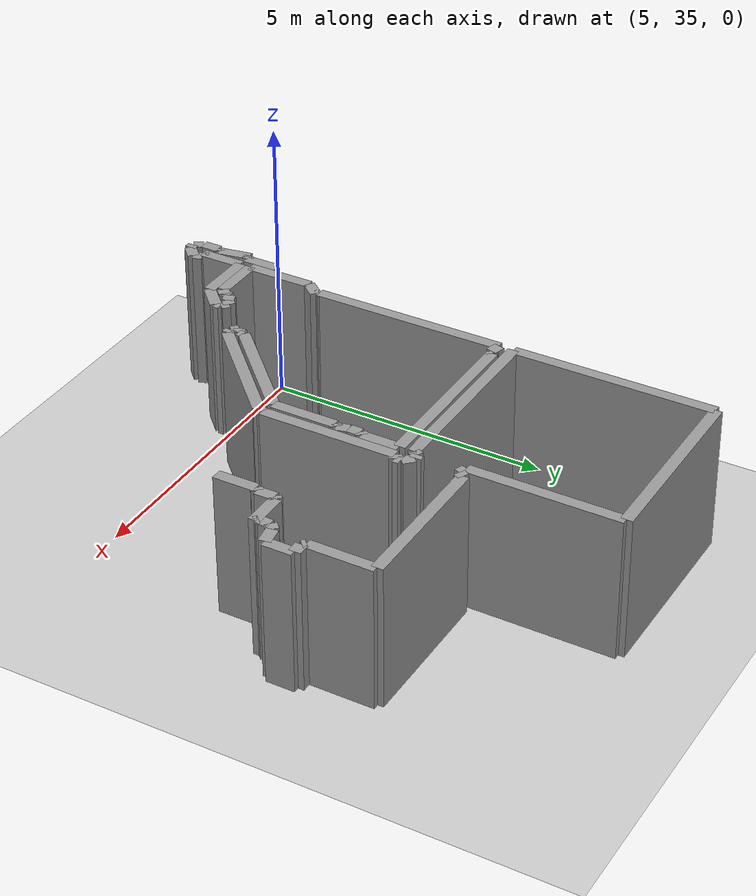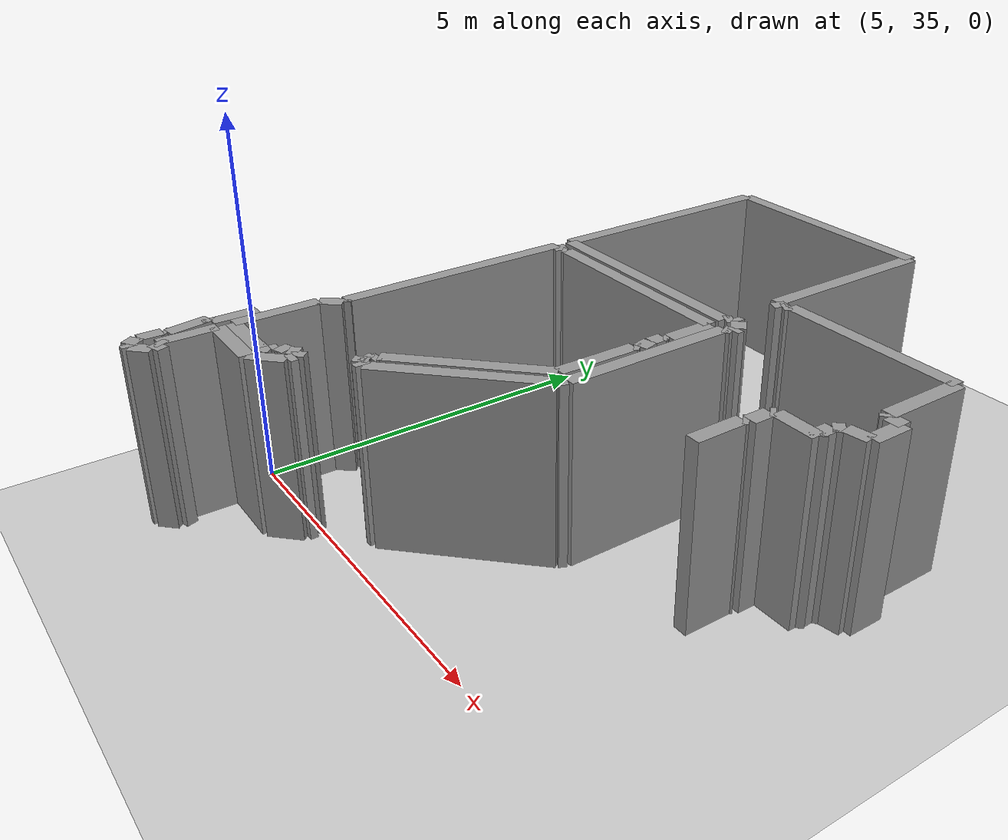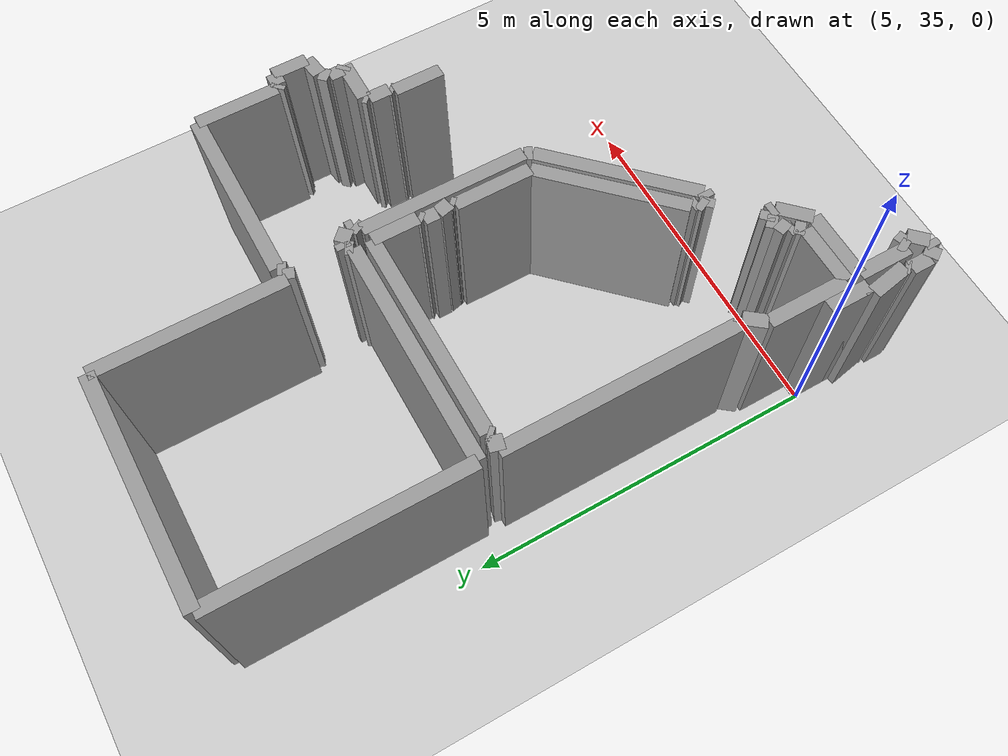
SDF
<sdf version="1.4">
 <world name="1_wall">
  <model name="ground_plane">
   <static>1</static>
   <link name="link">
    <collision name="collision">
     <geometry><plane><normal>0 0 1</normal><size>1000 1000</size></plane></geometry>
     <surface><friction><ode><mu>100</mu><mu2>50</mu2></ode></friction></surface>
    </collision>
    <visual name="visual">
     <cast_shadows>0</cast_shadows>
     <geometry><plane><normal>0 0 1</normal><size>10000 10000</size></plane></geometry>
     <material>
      <script><uri>file://media/materials/scripts/gazebo.material</uri><name>Gazebo/Grey</name></script>
     </material>
    </visual>
    <velocity_decay><linear>0</linear><angular>0</angular></velocity_decay>
   </link>
  </model>
  <model name="Wall_199">
   <static>1</static>
   <link name="Wall_199">
    <collision name="Wall_Collision_199">
     <geometry><box><size>0.6000000000000014 0.2 2.5</size></box></geometry>
     <pose>0 0 1.25 0 -0 0</pose>
    </collision>
    <visual name="Wall_Visual_199">
     <pose>0 0 1.25 0 -0 0</pose>
     <geometry><box><size>0.6000000000000014 0.2 2.5</size></box></geometry>
     <material>
      <script><uri>file://media/materials/scripts/gazebo.material</uri><name>Gazebo/Grey</name></script>
     </material>
    </visual>
    <velocity_decay><linear>0</linear><angular>0</angular></velocity_decay>
    <pose>5.1000000000000005 34.75 0 0 0 -1.5707963267948966</pose>
   </link>
  </model>
  <model name="Wall_200">
   <static>1</static>
   <link name="Wall_200">
    <collision name="Wall_Collision_200">
     <geometry><box><size>0.10000000000000053 0.2 2.5</size></box></geometry>
     <pose>0 0 1.25 0 -0 0</pose>
    </collision>
    <visual name="Wall_Visual_200">
     <pose>0 0 1.25 0 -0 0</pose>
     <geometry><box><size>0.10000000000000053 0.2 2.5</size></box></geometry>
     <material>
      <script><uri>file://media/materials/scripts/gazebo.material</uri><name>Gazebo/Grey</name></script>
     </material>
    </visual>
    <velocity_decay><linear>0</linear><angular>0</angular></velocity_decay>
    <pose>5.050000000000001 34.45 0 0 0 3.141592653589793</pose>
   </link>
  </model>
  <model name="Wall_201">
   <static>1</static>
   <link name="Wall_201">
    <collision name="Wall_Collision_201">
     <geometry><box><size>0.5590169943749518 0.2 2.5</size></box></geometry>
     <pose>0 0 1.25 0 -0 0</pose>
    </collision>
    <visual name="Wall_Visual_201">
     <pose>0 0 1.25 0 -0 0</pose>
     <geometry><box><size>0.5590169943749518 0.2 2.5</size></box></geometry>
     <material>
      <script><uri>file://media/materials/scripts/gazebo.material</uri><name>Gazebo/Grey</name></script>
     </material>
    </visual>
    <velocity_decay><linear>0</linear><angular>0</angular></velocity_decay>
    <pose>5.050000000000001 34.175 0 0 0 -1.3909428270024187</pose>
   </link>
  </model>
  <model name="Wall_202">
   <static>1</static>
   <link name="Wall_202">
    <collision name="Wall_Collision_202">
     <geometry><box><size>0.07071067811865261 0.2 2.5</size></box></geometry>
     <pose>0 0 1.25 0 -0 0</pose>
    </collision>
    <visual name="Wall_Visual_202">
     <pose>0 0 1.25 0 -0 0</pose>
     <geometry><box><size>0.07071067811865261 0.2 2.5</size></box></geometry>
     <material>
      <script><uri>file://media/materials/scripts/gazebo.material</uri><name>Gazebo/Grey</name></script>
     </material>
    </visual>
    <velocity_decay><linear>0</linear><angular>0</angular></velocity_decay>
    <pose>5.075000000000001 33.875 0 0 0 -2.3561944901923715</pose>
   </link>
  </model>
  <model name="Wall_203">
   <static>1</static>
   <link name="Wall_203">
    <collision name="Wall_Collision_203">
     <geometry><box><size>0.29999999999999716 0.2 2.5</size></box></geometry>
     <pose>0 0 1.25 0 -0 0</pose>
    </collision>
    <visual name="Wall_Visual_203">
     <pose>0 0 1.25 0 -0 0</pose>
     <geometry><box><size>0.29999999999999716 0.2 2.5</size></box></geometry>
     <material>
      <script><uri>file://media/materials/scripts/gazebo.material</uri><name>Gazebo/Grey</name></script>
     </material>
    </visual>
    <velocity_decay><linear>0</linear><angular>0</angular></velocity_decay>
    <pose>5.050000000000001 33.7 0 0 0 -1.5707963267948966</pose>
   </link>
  </model>
  <model name="Wall_204">
   <static>1</static>
   <link name="Wall_204">
    <collision name="Wall_Collision_204">
     <geometry><box><size>0.180277563773204 0.2 2.5</size></box></geometry>
     <pose>0 0 1.25 0 -0 0</pose>
    </collision>
    <visual name="Wall_Visual_204">
     <pose>0 0 1.25 0 -0 0</pose>
     <geometry><box><size>0.180277563773204 0.2 2.5</size></box></geometry>
     <material>
      <script><uri>file://media/materials/scripts/gazebo.material</uri><name>Gazebo/Grey</name></script>
     </material>
    </visual>
    <velocity_decay><linear>0</linear><angular>0</angular></velocity_decay>
    <pose>5.1000000000000005 33.475 0 0 0 -0.9827937232473481</pose>
   </link>
  </model>
  <model name="Wall_205">
   <static>1</static>
   <link name="Wall_205">
    <collision name="Wall_Collision_205">
     <geometry><box><size>0.09999999999999964 0.2 2.5</size></box></geometry>
     <pose>0 0 1.25 0 -0 0</pose>
    </collision>
    <visual name="Wall_Visual_205">
     <pose>0 0 1.25 0 -0 0</pose>
     <geometry><box><size>0.09999999999999964 0.2 2.5</size></box></geometry>
     <material>
      <script><uri>file://media/materials/scripts/gazebo.material</uri><name>Gazebo/Grey</name></script>
     </material>
    </visual>
    <velocity_decay><linear>0</linear><angular>0</angular></velocity_decay>
    <pose>5.2 33.4 0 0 0 0.0</pose>
   </link>
  </model>
  <model name="Wall_206">
   <static>1</static>
   <link name="Wall_206">
    <collision name="Wall_Collision_206">
     <geometry><box><size>0.28284271247462117 0.2 2.5</size></box></geometry>
     <pose>0 0 1.25 0 -0 0</pose>
    </collision>
    <visual name="Wall_Visual_206">
     <pose>0 0 1.25 0 -0 0</pose>
     <geometry><box><size>0.28284271247462117 0.2 2.5</size></box></geometry>
     <material>
      <script><uri>file://media/materials/scripts/gazebo.material</uri><name>Gazebo/Grey</name></script>
     </material>
    </visual>
    <velocity_decay><linear>0</linear><angular>0</angular></velocity_decay>
    <pose>5.35 33.5 0 0 0 0.7853981633974549</pose>
   </link>
  </model>
  <model name="Wall_207">
   <static>1</static>
   <link name="Wall_207">
    <collision name="Wall_Collision_207">
     <geometry><box><size>0.15811388300841756 0.2 2.5</size></box></geometry>
     <pose>0 0 1.25 0 -0 0</pose>
    </collision>
    <visual name="Wall_Visual_207">
     <pose>0 0 1.25 0 -0 0</pose>
     <geometry><box><size>0.15811388300841756 0.2 2.5</size></box></geometry>
     <material>
      <script><uri>file://media/materials/scripts/gazebo.material</uri><name>Gazebo/Grey</name></script>
     </material>
    </visual>
    <velocity_decay><linear>0</linear><angular>0</angular></velocity_decay>
    <pose>5.425000000000001 33.675 0 0 0 1.8925468811915407</pose>
   </link>
  </model>
  <model name="Wall_208">
   <static>1</static>
   <link name="Wall_208">
    <collision name="Wall_Collision_208">
     <geometry><box><size>0.1118033988749879 0.2 2.5</size></box></geometry>
     <pose>0 0 1.25 0 -0 0</pose>
    </collision>
    <visual name="Wall_Visual_208">
     <pose>0 0 1.25 0 -0 0</pose>
     <geometry><box><size>0.1118033988749879 0.2 2.5</size></box></geometry>
     <material>
      <script><uri>file://media/materials/scripts/gazebo.material</uri><name>Gazebo/Grey</name></script>
     </material>
    </visual>
    <velocity_decay><linear>0</linear><angular>0</angular></velocity_decay>
    <pose>5.3500000000000005 33.725 0 0 0 -2.6779450445890083</pose>
   </link>
  </model>
  <model name="Wall_209">
   <static>1</static>
   <link name="Wall_209">
    <collision name="Wall_Collision_209">
     <geometry><box><size>0.75 0.2 2.5</size></box></geometry>
     <pose>0 0 1.25 0 -0 0</pose>
    </collision>
    <visual name="Wall_Visual_209">
     <pose>0 0 1.25 0 -0 0</pose>
     <geometry><box><size>0.75 0.2 2.5</size></box></geometry>
     <material>
      <script><uri>file://media/materials/scripts/gazebo.material</uri><name>Gazebo/Grey</name></script>
     </material>
    </visual>
    <velocity_decay><linear>0</linear><angular>0</angular></velocity_decay>
    <pose>5.300000000000001 34.075 0 0 0 1.5707963267948966</pose>
   </link>
  </model>
  <model name="Wall_210">
   <static>1</static>
   <link name="Wall_210">
    <collision name="Wall_Collision_210">
     <geometry><box><size>0.9499999999999993 0.2 2.5</size></box></geometry>
     <pose>0 0 1.25 0 -0 0</pose>
    </collision>
    <visual name="Wall_Visual_210">
     <pose>0 0 1.25 0 -0 0</pose>
     <geometry><box><size>0.9499999999999993 0.2 2.5</size></box></geometry>
     <material>
      <script><uri>file://media/materials/scripts/gazebo.material</uri><name>Gazebo/Grey</name></script>
     </material>
    </visual>
    <velocity_decay><linear>0</linear><angular>0</angular></velocity_decay>
    <pose>5.775 34.45 0 0 0 0.0</pose>
   </link>
  </model>
  <model name="Wall_211">
   <static>1</static>
   <link name="Wall_211">
    <collision name="Wall_Collision_211">
     <geometry><box><size>0.4949747468305847 0.2 2.5</size></box></geometry>
     <pose>0 0 1.25 0 -0 0</pose>
    </collision>
    <visual name="Wall_Visual_211">
     <pose>0 0 1.25 0 -0 0</pose>
     <geometry><box><size>0.4949747468305847 0.2 2.5</size></box></geometry>
     <material>
      <script><uri>file://media/materials/scripts/gazebo.material</uri><name>Gazebo/Grey</name></script>
     </material>
    </visual>
    <velocity_decay><linear>0</linear><angular>0</angular></velocity_decay>
    <pose>6.425000000000001 34.625 0 0 0 0.7853981633974496</pose>
   </link>
  </model>
  <model name="Wall_212">
   <static>1</static>
   <link name="Wall_212">
    <collision name="Wall_Collision_212">
     <geometry><box><size>0.09999999999999432 0.2 2.5</size></box></geometry>
     <pose>0 0 1.25 0 -0 0</pose>
    </collision>
    <visual name="Wall_Visual_212">
     <pose>0 0 1.25 0 -0 0</pose>
     <geometry><box><size>0.09999999999999432 0.2 2.5</size></box></geometry>
     <material>
      <script><uri>file://media/materials/scripts/gazebo.material</uri><name>Gazebo/Grey</name></script>
     </material>
    </visual>
    <velocity_decay><linear>0</linear><angular>0</angular></velocity_decay>
    <pose>6.6000000000000005 34.85 0 0 0 1.5707963267948966</pose>
   </link>
  </model>
  <model name="Wall_213">
   <static>1</static>
   <link name="Wall_213">
    <collision name="Wall_Collision_213">
     <geometry><box><size>0.1414213562373109 0.2 2.5</size></box></geometry>
     <pose>0 0 1.25 0 -0 0</pose>
    </collision>
    <visual name="Wall_Visual_213">
     <pose>0 0 1.25 0 -0 0</pose>
     <geometry><box><size>0.1414213562373109 0.2 2.5</size></box></geometry>
     <material>
      <script><uri>file://media/materials/scripts/gazebo.material</uri><name>Gazebo/Grey</name></script>
     </material>
    </visual>
    <velocity_decay><linear>0</linear><angular>0</angular></velocity_decay>
    <pose>6.550000000000001 34.95 0 0 0 2.3561944901923404</pose>
   </link>
  </model>
  <model name="Wall_214">
   <static>1</static>
   <link name="Wall_214">
    <collision name="Wall_Collision_214">
     <geometry><box><size>0.14142135623731025 0.2 2.5</size></box></geometry>
     <pose>0 0 1.25 0 -0 0</pose>
    </collision>
    <visual name="Wall_Visual_214">
     <pose>0 0 1.25 0 -0 0</pose>
     <geometry><box><size>0.14142135623731025 0.2 2.5</size></box></geometry>
     <material>
      <script><uri>file://media/materials/scripts/gazebo.material</uri><name>Gazebo/Grey</name></script>
     </material>
    </visual>
    <velocity_decay><linear>0</linear><angular>0</angular></velocity_decay>
    <pose>6.45 34.95 0 0 0 -2.356194490192336</pose>
   </link>
  </model>
  <model name="Wall_215">
   <static>1</static>
   <link name="Wall_215">
    <collision name="Wall_Collision_215">
     <geometry><box><size>0.1581138830084184 0.2 2.5</size></box></geometry>
     <pose>0 0 1.25 0 -0 0</pose>
    </collision>
    <visual name="Wall_Visual_215">
     <pose>0 0 1.25 0 -0 0</pose>
     <geometry><box><size>0.1581138830084184 0.2 2.5</size></box></geometry>
     <material>
      <script><uri>file://media/materials/scripts/gazebo.material</uri><name>Gazebo/Grey</name></script>
     </material>
    </visual>
    <velocity_decay><linear>0</linear><angular>0</angular></velocity_decay>
    <pose>6.325 34.875 0 0 0 -2.8198420991931687</pose>
   </link>
  </model>
  <model name="Wall_216">
   <static>1</static>
   <link name="Wall_216">
    <collision name="Wall_Collision_216">
     <geometry><box><size>0.10000000000000142 0.2 2.5</size></box></geometry>
     <pose>0 0 1.25 0 -0 0</pose>
    </collision>
    <visual name="Wall_Visual_216">
     <pose>0 0 1.25 0 -0 0</pose>
     <geometry><box><size>0.10000000000000142 0.2 2.5</size></box></geometry>
     <material>
      <script><uri>file://media/materials/scripts/gazebo.material</uri><name>Gazebo/Grey</name></script>
     </material>
    </visual>
    <velocity_decay><linear>0</linear><angular>0</angular></velocity_decay>
    <pose>6.25 34.8 0 0 0 -1.5707963267948966</pose>
   </link>
  </model>
  <model name="Wall_217">
   <static>1</static>
   <link name="Wall_217">
    <collision name="Wall_Collision_217">
     <geometry><box><size>0.14142135623731025 0.2 2.5</size></box></geometry>
     <pose>0 0 1.25 0 -0 0</pose>
    </collision>
    <visual name="Wall_Visual_217">
     <pose>0 0 1.25 0 -0 0</pose>
     <geometry><box><size>0.14142135623731025 0.2 2.5</size></box></geometry>
     <material>
      <script><uri>file://media/materials/scripts/gazebo.material</uri><name>Gazebo/Grey</name></script>
     </material>
    </visual>
    <velocity_decay><linear>0</linear><angular>0</angular></velocity_decay>
    <pose>6.2 34.7 0 0 0 -2.356194490192336</pose>
   </link>
  </model>
  <model name="Wall_218">
   <static>1</static>
   <link name="Wall_218">
    <collision name="Wall_Collision_218">
     <geometry><box><size>0.8499999999999996 0.2 2.5</size></box></geometry>
     <pose>0 0 1.25 0 -0 0</pose>
    </collision>
    <visual name="Wall_Visual_218">
     <pose>0 0 1.25 0 -0 0</pose>
     <geometry><box><size>0.8499999999999996 0.2 2.5</size></box></geometry>
     <material>
      <script><uri>file://media/materials/scripts/gazebo.material</uri><name>Gazebo/Grey</name></script>
     </material>
    </visual>
    <velocity_decay><linear>0</linear><angular>0</angular></velocity_decay>
    <pose>5.7250000000000005 34.65 0 0 0 3.141592653589793</pose>
   </link>
  </model>
  <model name="Wall_219">
   <static>1</static>
   <link name="Wall_219">
    <collision name="Wall_Collision_219">
     <geometry><box><size>1.1500000000000057 0.2 2.5</size></box></geometry>
     <pose>0 0 1.25 0 -0 0</pose>
    </collision>
    <visual name="Wall_Visual_219">
     <pose>0 0 1.25 0 -0 0</pose>
     <geometry><box><size>1.1500000000000057 0.2 2.5</size></box></geometry>
     <material>
      <script><uri>file://media/materials/scripts/gazebo.material</uri><name>Gazebo/Grey</name></script>
     </material>
    </visual>
    <velocity_decay><linear>0</linear><angular>0</angular></velocity_decay>
    <pose>5.300000000000001 35.225 0 0 0 1.5707963267948966</pose>
   </link>
  </model>
  <model name="Wall_220">
   <static>1</static>
   <link name="Wall_220">
    <collision name="Wall_Collision_220">
     <geometry><box><size>0.320156211871642 0.2 2.5</size></box></geometry>
     <pose>0 0 1.25 0 -0 0</pose>
    </collision>
    <visual name="Wall_Visual_220">
     <pose>0 0 1.25 0 -0 0</pose>
     <geometry><box><size>0.320156211871642 0.2 2.5</size></box></geometry>
     <material>
      <script><uri>file://media/materials/scripts/gazebo.material</uri><name>Gazebo/Grey</name></script>
     </material>
    </visual>
    <velocity_decay><linear>0</linear><angular>0</angular></velocity_decay>
    <pose>5.4 35.925000000000004 0 0 0 0.8960553845713457</pose>
   </link>
  </model>
  <model name="Wall_221">
   <static>1</static>
   <link name="Wall_221">
    <collision name="Wall_Collision_221">
     <geometry><box><size>0.07071067811865261 0.2 2.5</size></box></geometry>
     <pose>0 0 1.25 0 -0 0</pose>
    </collision>
    <visual name="Wall_Visual_221">
     <pose>0 0 1.25 0 -0 0</pose>
     <geometry><box><size>0.07071067811865261 0.2 2.5</size></box></geometry>
     <material>
      <script><uri>file://media/materials/scripts/gazebo.material</uri><name>Gazebo/Grey</name></script>
     </material>
    </visual>
    <velocity_decay><linear>0</linear><angular>0</angular></velocity_decay>
    <pose>5.475 36.075 0 0 0 2.3561944901923715</pose>
   </link>
  </model>
  <model name="Wall_222">
   <static>1</static>
   <link name="Wall_222">
    <collision name="Wall_Collision_222">
     <geometry><box><size>3.3500000000000014 0.2 2.5</size></box></geometry>
     <pose>0 0 1.25 0 -0 0</pose>
    </collision>
    <visual name="Wall_Visual_222">
     <pose>0 0 1.25 0 -0 0</pose>
     <geometry><box><size>3.3500000000000014 0.2 2.5</size></box></geometry>
     <material>
      <script><uri>file://media/materials/scripts/gazebo.material</uri><name>Gazebo/Grey</name></script>
     </material>
    </visual>
    <velocity_decay><linear>0</linear><angular>0</angular></velocity_decay>
    <pose>5.45 37.775000000000006 0 0 0 1.5707963267948966</pose>
   </link>
  </model>
  <model name="Wall_223">
   <static>1</static>
   <link name="Wall_223">
    <collision name="Wall_Collision_223">
     <geometry><box><size>0.2061552812808825 0.2 2.5</size></box></geometry>
     <pose>0 0 1.25 0 -0 0</pose>
    </collision>
    <visual name="Wall_Visual_223">
     <pose>0 0 1.25 0 -0 0</pose>
     <geometry><box><size>0.2061552812808825 0.2 2.5</size></box></geometry>
     <material>
      <script><uri>file://media/materials/scripts/gazebo.material</uri><name>Gazebo/Grey</name></script>
     </material>
    </visual>
    <velocity_decay><linear>0</linear><angular>0</angular></velocity_decay>
    <pose>5.550000000000001 39.425000000000004 0 0 0 -0.24497866312685057</pose>
   </link>
  </model>
  <model name="Wall_224">
   <static>1</static>
   <link name="Wall_224">
    <collision name="Wall_Collision_224">
     <geometry><box><size>0.07071067811865261 0.2 2.5</size></box></geometry>
     <pose>0 0 1.25 0 -0 0</pose>
    </collision>
    <visual name="Wall_Visual_224">
     <pose>0 0 1.25 0 -0 0</pose>
     <geometry><box><size>0.07071067811865261 0.2 2.5</size></box></geometry>
     <material>
      <script><uri>file://media/materials/scripts/gazebo.material</uri><name>Gazebo/Grey</name></script>
     </material>
    </visual>
    <velocity_decay><linear>0</linear><angular>0</angular></velocity_decay>
    <pose>5.675000000000001 39.425000000000004 0 0 0 0.7853981633974216</pose>
   </link>
  </model>
  <model name="Wall_225">
   <static>1</static>
   <link name="Wall_225">
    <collision name="Wall_Collision_225">
     <geometry><box><size>3.000000000000001 0.2 2.5</size></box></geometry>
     <pose>0 0 1.25 0 -0 0</pose>
    </collision>
    <visual name="Wall_Visual_225">
     <pose>0 0 1.25 0 -0 0</pose>
     <geometry><box><size>3.000000000000001 0.2 2.5</size></box></geometry>
     <material>
      <script><uri>file://media/materials/scripts/gazebo.material</uri><name>Gazebo/Grey</name></script>
     </material>
    </visual>
    <velocity_decay><linear>0</linear><angular>0</angular></velocity_decay>
    <pose>7.200000000000001 39.45 0 0 0 0.0</pose>
   </link>
  </model>
  <model name="Wall_226">
   <static>1</static>
   <link name="Wall_226">
    <collision name="Wall_Collision_226">
     <geometry><box><size>0.6499999999999986 0.2 2.5</size></box></geometry>
     <pose>0 0 1.25 0 -0 0</pose>
    </collision>
    <visual name="Wall_Visual_226">
     <pose>0 0 1.25 0 -0 0</pose>
     <geometry><box><size>0.6499999999999986 0.2 2.5</size></box></geometry>
     <material>
      <script><uri>file://media/materials/scripts/gazebo.material</uri><name>Gazebo/Grey</name></script>
     </material>
    </visual>
    <velocity_decay><linear>0</linear><angular>0</angular></velocity_decay>
    <pose>8.700000000000001 39.125 0 0 0 -1.5707963267948966</pose>
   </link>
  </model>
  <model name="Wall_227">
   <static>1</static>
   <link name="Wall_227">
    <collision name="Wall_Collision_227">
     <geometry><box><size>0.07071067811865826 0.2 2.5</size></box></geometry>
     <pose>0 0 1.25 0 -0 0</pose>
    </collision>
    <visual name="Wall_Visual_227">
     <pose>0 0 1.25 0 -0 0</pose>
     <geometry><box><size>0.07071067811865826 0.2 2.5</size></box></geometry>
     <material>
      <script><uri>file://media/materials/scripts/gazebo.material</uri><name>Gazebo/Grey</name></script>
     </material>
    </visual>
    <velocity_decay><linear>0</linear><angular>0</angular></velocity_decay>
    <pose>8.675 38.775000000000006 0 0 0 -2.3561944901923093</pose>
   </link>
  </model>
  <model name="Wall_228">
   <static>1</static>
   <link name="Wall_228">
    <collision name="Wall_Collision_228">
     <geometry><box><size>0.19999999999999574 0.2 2.5</size></box></geometry>
     <pose>0 0 1.25 0 -0 0</pose>
    </collision>
    <visual name="Wall_Visual_228">
     <pose>0 0 1.25 0 -0 0</pose>
     <geometry><box><size>0.19999999999999574 0.2 2.5</size></box></geometry>
     <material>
      <script><uri>file://media/materials/scripts/gazebo.material</uri><name>Gazebo/Grey</name></script>
     </material>
    </visual>
    <velocity_decay><linear>0</linear><angular>0</angular></velocity_decay>
    <pose>8.65 38.650000000000006 0 0 0 -1.5707963267948966</pose>
   </link>
  </model>
  <model name="Wall_229">
   <static>1</static>
   <link name="Wall_229">
    <collision name="Wall_Collision_229">
     <geometry><box><size>0.20615528128088598 0.2 2.5</size></box></geometry>
     <pose>0 0 1.25 0 -0 0</pose>
    </collision>
    <visual name="Wall_Visual_229">
     <pose>0 0 1.25 0 -0 0</pose>
     <geometry><box><size>0.20615528128088598 0.2 2.5</size></box></geometry>
     <material>
      <script><uri>file://media/materials/scripts/gazebo.material</uri><name>Gazebo/Grey</name></script>
     </material>
    </visual>
    <velocity_decay><linear>0</linear><angular>0</angular></velocity_decay>
    <pose>8.675 38.45 0 0 0 -1.3258176636680326</pose>
   </link>
  </model>
  <model name="Wall_230">
   <static>1</static>
   <link name="Wall_230">
    <collision name="Wall_Collision_230">
     <geometry><box><size>0.07071067811865325 0.2 2.5</size></box></geometry>
     <pose>0 0 1.25 0 -0 0</pose>
    </collision>
    <visual name="Wall_Visual_230">
     <pose>0 0 1.25 0 -0 0</pose>
     <geometry><box><size>0.07071067811865325 0.2 2.5</size></box></geometry>
     <material>
      <script><uri>file://media/materials/scripts/gazebo.material</uri><name>Gazebo/Grey</name></script>
     </material>
    </visual>
    <velocity_decay><linear>0</linear><angular>0</angular></velocity_decay>
    <pose>8.675 38.325 0 0 0 -2.3561944901923804</pose>
   </link>
  </model>
  <model name="Wall_231">
   <static>1</static>
   <link name="Wall_231">
    <collision name="Wall_Collision_231">
     <geometry><box><size>1.1000000000000014 0.2 2.5</size></box></geometry>
     <pose>0 0 1.25 0 -0 0</pose>
    </collision>
    <visual name="Wall_Visual_231">
     <pose>0 0 1.25 0 -0 0</pose>
     <geometry><box><size>1.1000000000000014 0.2 2.5</size></box></geometry>
     <material>
      <script><uri>file://media/materials/scripts/gazebo.material</uri><name>Gazebo/Grey</name></script>
     </material>
    </visual>
    <velocity_decay><linear>0</linear><angular>0</angular></velocity_decay>
    <pose>8.65 37.75 0 0 0 -1.5707963267948966</pose>
   </link>
  </model>
  <model name="Wall_232">
   <static>1</static>
   <link name="Wall_232">
    <collision name="Wall_Collision_232">
     <geometry><box><size>2.1213203435596424 0.2 2.5</size></box></geometry>
     <pose>0 0 1.25 0 -0 0</pose>
    </collision>
    <visual name="Wall_Visual_232">
     <pose>0 0 1.25 0 -0 0</pose>
     <geometry><box><size>2.1213203435596424 0.2 2.5</size></box></geometry>
     <material>
      <script><uri>file://media/materials/scripts/gazebo.material</uri><name>Gazebo/Grey</name></script>
     </material>
    </visual>
    <velocity_decay><linear>0</linear><angular>0</angular></velocity_decay>
    <pose>7.9 36.45 0 0 0 -2.356194490192345</pose>
   </link>
  </model>
  <model name="Wall_233">
   <static>1</static>
   <link name="Wall_233">
    <collision name="Wall_Collision_233">
     <geometry><box><size>0.10000000000000142 0.2 2.5</size></box></geometry>
     <pose>0 0 1.25 0 -0 0</pose>
    </collision>
    <visual name="Wall_Visual_233">
     <pose>0 0 1.25 0 -0 0</pose>
     <geometry><box><size>0.10000000000000142 0.2 2.5</size></box></geometry>
     <material>
      <script><uri>file://media/materials/scripts/gazebo.material</uri><name>Gazebo/Grey</name></script>
     </material>
    </visual>
    <velocity_decay><linear>0</linear><angular>0</angular></velocity_decay>
    <pose>7.15 35.650000000000006 0 0 0 -1.5707963267948966</pose>
   </link>
  </model>
  <model name="Wall_234">
   <static>1</static>
   <link name="Wall_234">
    <collision name="Wall_Collision_234">
     <geometry><box><size>0.1118033988749879 0.2 2.5</size></box></geometry>
     <pose>0 0 1.25 0 -0 0</pose>
    </collision>
    <visual name="Wall_Visual_234">
     <pose>0 0 1.25 0 -0 0</pose>
     <geometry><box><size>0.1118033988749879 0.2 2.5</size></box></geometry>
     <material>
      <script><uri>file://media/materials/scripts/gazebo.material</uri><name>Gazebo/Grey</name></script>
     </material>
    </visual>
    <velocity_decay><linear>0</linear><angular>0</angular></velocity_decay>
    <pose>7.1000000000000005 35.575 0 0 0 -2.6779450445890083</pose>
   </link>
  </model>
  <model name="Wall_235">
   <static>1</static>
   <link name="Wall_235">
    <collision name="Wall_Collision_235">
     <geometry><box><size>0.14142135623731025 0.2 2.5</size></box></geometry>
     <pose>0 0 1.25 0 -0 0</pose>
    </collision>
    <visual name="Wall_Visual_235">
     <pose>0 0 1.25 0 -0 0</pose>
     <geometry><box><size>0.14142135623731025 0.2 2.5</size></box></geometry>
     <material>
      <script><uri>file://media/materials/scripts/gazebo.material</uri><name>Gazebo/Grey</name></script>
     </material>
    </visual>
    <velocity_decay><linear>0</linear><angular>0</angular></velocity_decay>
    <pose>7.1000000000000005 35.5 0 0 0 -0.7853981633974572</pose>
   </link>
  </model>
  <model name="Wall_236">
   <static>1</static>
   <link name="Wall_236">
    <collision name="Wall_Collision_236">
     <geometry><box><size>0.09999999999999964 0.2 2.5</size></box></geometry>
     <pose>0 0 1.25 0 -0 0</pose>
    </collision>
    <visual name="Wall_Visual_236">
     <pose>0 0 1.25 0 -0 0</pose>
     <geometry><box><size>0.09999999999999964 0.2 2.5</size></box></geometry>
     <material>
      <script><uri>file://media/materials/scripts/gazebo.material</uri><name>Gazebo/Grey</name></script>
     </material>
    </visual>
    <velocity_decay><linear>0</linear><angular>0</angular></velocity_decay>
    <pose>7.2 35.45 0 0 0 0.0</pose>
   </link>
  </model>
  <model name="Wall_237">
   <static>1</static>
   <link name="Wall_237">
    <collision name="Wall_Collision_237">
     <geometry><box><size>2.2627416997969525 0.2 2.5</size></box></geometry>
     <pose>0 0 1.25 0 -0 0</pose>
    </collision>
    <visual name="Wall_Visual_237">
     <pose>0 0 1.25 0 -0 0</pose>
     <geometry><box><size>2.2627416997969525 0.2 2.5</size></box></geometry>
     <material>
      <script><uri>file://media/materials/scripts/gazebo.material</uri><name>Gazebo/Grey</name></script>
     </material>
    </visual>
    <velocity_decay><linear>0</linear><angular>0</angular></velocity_decay>
    <pose>8.05 36.25 0 0 0 0.7853981633974488</pose>
   </link>
  </model>
  <model name="Wall_238">
   <static>1</static>
   <link name="Wall_238">
    <collision name="Wall_Collision_238">
     <geometry><box><size>0.11180339887498472 0.2 2.5</size></box></geometry>
     <pose>0 0 1.25 0 -0 0</pose>
    </collision>
    <visual name="Wall_Visual_238">
     <pose>0 0 1.25 0 -0 0</pose>
     <geometry><box><size>0.11180339887498472 0.2 2.5</size></box></geometry>
     <material>
      <script><uri>file://media/materials/scripts/gazebo.material</uri><name>Gazebo/Grey</name></script>
     </material>
    </visual>
    <velocity_decay><linear>0</linear><angular>0</angular></velocity_decay>
    <pose>8.875 37.1 0 0 0 1.107148717794062</pose>
   </link>
  </model>
  <model name="Wall_239">
   <static>1</static>
   <link name="Wall_239">
    <collision name="Wall_Collision_239">
     <geometry><box><size>2.3500000000000014 0.2 2.5</size></box></geometry>
     <pose>0 0 1.25 0 -0 0</pose>
    </collision>
    <visual name="Wall_Visual_239">
     <pose>0 0 1.25 0 -0 0</pose>
     <geometry><box><size>2.3500000000000014 0.2 2.5</size></box></geometry>
     <material>
      <script><uri>file://media/materials/scripts/gazebo.material</uri><name>Gazebo/Grey</name></script>
     </material>
    </visual>
    <velocity_decay><linear>0</linear><angular>0</angular></velocity_decay>
    <pose>8.9 38.325 0 0 0 1.5707963267948966</pose>
   </link>
  </model>
  <model name="Wall_240">
   <static>1</static>
   <link name="Wall_240">
    <collision name="Wall_Collision_240">
     <geometry><box><size>0.11180339887499106 0.2 2.5</size></box></geometry>
     <pose>0 0 1.25 0 -0 0</pose>
    </collision>
    <visual name="Wall_Visual_240">
     <pose>0 0 1.25 0 -0 0</pose>
     <geometry><box><size>0.11180339887499106 0.2 2.5</size></box></geometry>
     <material>
      <script><uri>file://media/materials/scripts/gazebo.material</uri><name>Gazebo/Grey</name></script>
     </material>
    </visual>
    <velocity_decay><linear>0</linear><angular>0</angular></velocity_decay>
    <pose>8.95 39.525000000000006 0 0 0 0.4636476090008416</pose>
   </link>
  </model>
  <model name="Wall_241">
   <static>1</static>
   <link name="Wall_241">
    <collision name="Wall_Collision_241">
     <geometry><box><size>0.10000000000000142 0.2 2.5</size></box></geometry>
     <pose>0 0 1.25 0 -0 0</pose>
    </collision>
    <visual name="Wall_Visual_241">
     <pose>0 0 1.25 0 -0 0</pose>
     <geometry><box><size>0.10000000000000142 0.2 2.5</size></box></geometry>
     <material>
      <script><uri>file://media/materials/scripts/gazebo.material</uri><name>Gazebo/Grey</name></script>
     </material>
    </visual>
    <velocity_decay><linear>0</linear><angular>0</angular></velocity_decay>
    <pose>9.0 39.60000000000001 0 0 0 1.5707963267948966</pose>
   </link>
  </model>
  <model name="Wall_242">
   <static>1</static>
   <link name="Wall_242">
    <collision name="Wall_Collision_242">
     <geometry><box><size>0.2121320343559635 0.2 2.5</size></box></geometry>
     <pose>0 0 1.25 0 -0 0</pose>
    </collision>
    <visual name="Wall_Visual_242">
     <pose>0 0 1.25 0 -0 0</pose>
     <geometry><box><size>0.2121320343559635 0.2 2.5</size></box></geometry>
     <material>
      <script><uri>file://media/materials/scripts/gazebo.material</uri><name>Gazebo/Grey</name></script>
     </material>
    </visual>
    <velocity_decay><linear>0</linear><angular>0</angular></velocity_decay>
    <pose>8.925 39.72500000000001 0 0 0 2.356194490192351</pose>
   </link>
  </model>
  <model name="Wall_243">
   <static>1</static>
   <link name="Wall_243">
    <collision name="Wall_Collision_243">
     <geometry><box><size>0.09999999999999964 0.2 2.5</size></box></geometry>
     <pose>0 0 1.25 0 -0 0</pose>
    </collision>
    <visual name="Wall_Visual_243">
     <pose>0 0 1.25 0 -0 0</pose>
     <geometry><box><size>0.09999999999999964 0.2 2.5</size></box></geometry>
     <material>
      <script><uri>file://media/materials/scripts/gazebo.material</uri><name>Gazebo/Grey</name></script>
     </material>
    </visual>
    <velocity_decay><linear>0</linear><angular>0</angular></velocity_decay>
    <pose>8.8 39.800000000000004 0 0 0 3.141592653589793</pose>
   </link>
  </model>
  <model name="Wall_244">
   <static>1</static>
   <link name="Wall_244">
    <collision name="Wall_Collision_244">
     <geometry><box><size>0.11180339887499027 0.2 2.5</size></box></geometry>
     <pose>0 0 1.25 0 -0 0</pose>
    </collision>
    <visual name="Wall_Visual_244">
     <pose>0 0 1.25 0 -0 0</pose>
     <geometry><box><size>0.11180339887499027 0.2 2.5</size></box></geometry>
     <material>
      <script><uri>file://media/materials/scripts/gazebo.material</uri><name>Gazebo/Grey</name></script>
     </material>
    </visual>
    <velocity_decay><linear>0</linear><angular>0</angular></velocity_decay>
    <pose>8.725000000000001 39.75 0 0 0 -2.0344439357956885</pose>
   </link>
  </model>
  <model name="Wall_245">
   <static>1</static>
   <link name="Wall_245">
    <collision name="Wall_Collision_245">
     <geometry><box><size>3.250000000000001 0.2 2.5</size></box></geometry>
     <pose>0 0 1.25 0 -0 0</pose>
    </collision>
    <visual name="Wall_Visual_245">
     <pose>0 0 1.25 0 -0 0</pose>
     <geometry><box><size>3.250000000000001 0.2 2.5</size></box></geometry>
     <material>
      <script><uri>file://media/materials/scripts/gazebo.material</uri><name>Gazebo/Grey</name></script>
     </material>
    </visual>
    <velocity_decay><linear>0</linear><angular>0</angular></velocity_decay>
    <pose>7.075000000000001 39.7 0 0 0 3.141592653589793</pose>
   </link>
  </model>
  <model name="Wall_246">
   <static>1</static>
   <link name="Wall_246">
    <collision name="Wall_Collision_246">
     <geometry><box><size>3.5 0.2 2.5</size></box></geometry>
     <pose>0 0 1.25 0 -0 0</pose>
    </collision>
    <visual name="Wall_Visual_246">
     <pose>0 0 1.25 0 -0 0</pose>
     <geometry><box><size>3.5 0.2 2.5</size></box></geometry>
     <material>
      <script><uri>file://media/materials/scripts/gazebo.material</uri><name>Gazebo/Grey</name></script>
     </material>
    </visual>
    <velocity_decay><linear>0</linear><angular>0</angular></velocity_decay>
    <pose>5.45 41.45 0 0 0 1.5707963267948966</pose>
   </link>
  </model>
  <model name="Wall_247">
   <static>1</static>
   <link name="Wall_247">
    <collision name="Wall_Collision_247">
     <geometry><box><size>3.250000000000001 0.2 2.5</size></box></geometry>
     <pose>0 0 1.25 0 -0 0</pose>
    </collision>
    <visual name="Wall_Visual_247">
     <pose>0 0 1.25 0 -0 0</pose>
     <geometry><box><size>3.250000000000001 0.2 2.5</size></box></geometry>
     <material>
      <script><uri>file://media/materials/scripts/gazebo.material</uri><name>Gazebo/Grey</name></script>
     </material>
    </visual>
    <velocity_decay><linear>0</linear><angular>0</angular></velocity_decay>
    <pose>7.075000000000001 43.2 0 0 0 0.0</pose>
   </link>
  </model>
  <model name="Wall_248">
   <static>1</static>
   <link name="Wall_248">
    <collision name="Wall_Collision_248">
     <geometry><box><size>2.6000000000000014 0.2 2.5</size></box></geometry>
     <pose>0 0 1.25 0 -0 0</pose>
    </collision>
    <visual name="Wall_Visual_248">
     <pose>0 0 1.25 0 -0 0</pose>
     <geometry><box><size>2.6000000000000014 0.2 2.5</size></box></geometry>
     <material>
      <script><uri>file://media/materials/scripts/gazebo.material</uri><name>Gazebo/Grey</name></script>
     </material>
    </visual>
    <velocity_decay><linear>0</linear><angular>0</angular></velocity_decay>
    <pose>8.700000000000001 41.900000000000006 0 0 0 -1.5707963267948966</pose>
   </link>
  </model>
  <model name="Wall_249">
   <static>1</static>
   <link name="Wall_249">
    <collision name="Wall_Collision_249">
     <geometry><box><size>0.15811388300841672 0.2 2.5</size></box></geometry>
     <pose>0 0 1.25 0 -0 0</pose>
    </collision>
    <visual name="Wall_Visual_249">
     <pose>0 0 1.25 0 -0 0</pose>
     <geometry><box><size>0.15811388300841672 0.2 2.5</size></box></geometry>
     <material>
      <script><uri>file://media/materials/scripts/gazebo.material</uri><name>Gazebo/Grey</name></script>
     </material>
    </visual>
    <velocity_decay><linear>0</linear><angular>0</angular></velocity_decay>
    <pose>8.775 40.575 0 0 0 -0.321750554396628</pose>
   </link>
  </model>
  <model name="Wall_250">
   <static>1</static>
   <link name="Wall_250">
    <collision name="Wall_Collision_250">
     <geometry><box><size>0.11180339887499108 0.2 2.5</size></box></geometry>
     <pose>0 0 1.25 0 -0 0</pose>
    </collision>
    <visual name="Wall_Visual_250">
     <pose>0 0 1.25 0 -0 0</pose>
     <geometry><box><size>0.11180339887499108 0.2 2.5</size></box></geometry>
     <material>
      <script><uri>file://media/materials/scripts/gazebo.material</uri><name>Gazebo/Grey</name></script>
     </material>
    </visual>
    <velocity_decay><linear>0</linear><angular>0</angular></velocity_decay>
    <pose>8.875 40.60000000000001 0 0 0 1.1071487177940904</pose>
   </link>
  </model>
  <model name="Wall_251">
   <static>1</static>
   <link name="Wall_251">
    <collision name="Wall_Collision_251">
     <geometry><box><size>2.5500000000000007 0.2 2.5</size></box></geometry>
     <pose>0 0 1.25 0 -0 0</pose>
    </collision>
    <visual name="Wall_Visual_251">
     <pose>0 0 1.25 0 -0 0</pose>
     <geometry><box><size>2.5500000000000007 0.2 2.5</size></box></geometry>
     <material>
      <script><uri>file://media/materials/scripts/gazebo.material</uri><name>Gazebo/Grey</name></script>
     </material>
    </visual>
    <velocity_decay><linear>0</linear><angular>0</angular></velocity_decay>
    <pose>10.175 40.650000000000006 0 0 0 0.0</pose>
   </link>
  </model>
  <model name="Wall_252">
   <static>1</static>
   <link name="Wall_252">
    <collision name="Wall_Collision_252">
     <geometry><box><size>1.1500000000000057 0.2 2.5</size></box></geometry>
     <pose>0 0 1.25 0 -0 0</pose>
    </collision>
    <visual name="Wall_Visual_252">
     <pose>0 0 1.25 0 -0 0</pose>
     <geometry><box><size>1.1500000000000057 0.2 2.5</size></box></geometry>
     <material>
      <script><uri>file://media/materials/scripts/gazebo.material</uri><name>Gazebo/Grey</name></script>
     </material>
    </visual>
    <velocity_decay><linear>0</linear><angular>0</angular></velocity_decay>
    <pose>11.450000000000001 40.075 0 0 0 -1.5707963267948966</pose>
   </link>
  </model>
  <model name="Wall_253">
   <static>1</static>
   <link name="Wall_253">
    <collision name="Wall_Collision_253">
     <geometry><box><size>0.07071067811865199 0.2 2.5</size></box></geometry>
     <pose>0 0 1.25 0 -0 0</pose>
    </collision>
    <visual name="Wall_Visual_253">
     <pose>0 0 1.25 0 -0 0</pose>
     <geometry><box><size>0.07071067811865199 0.2 2.5</size></box></geometry>
     <material>
      <script><uri>file://media/materials/scripts/gazebo.material</uri><name>Gazebo/Grey</name></script>
     </material>
    </visual>
    <velocity_decay><linear>0</linear><angular>0</angular></velocity_decay>
    <pose>11.475000000000001 39.475 0 0 0 -0.7853981633974305</pose>
   </link>
  </model>
  <model name="Wall_254">
   <static>1</static>
   <link name="Wall_254">
    <collision name="Wall_Collision_254">
     <geometry><box><size>0.20000000000000107 0.2 2.5</size></box></geometry>
     <pose>0 0 1.25 0 -0 0</pose>
    </collision>
    <visual name="Wall_Visual_254">
     <pose>0 0 1.25 0 -0 0</pose>
     <geometry><box><size>0.20000000000000107 0.2 2.5</size></box></geometry>
     <material>
      <script><uri>file://media/materials/scripts/gazebo.material</uri><name>Gazebo/Grey</name></script>
     </material>
    </visual>
    <velocity_decay><linear>0</linear><angular>0</angular></velocity_decay>
    <pose>11.600000000000001 39.45 0 0 0 0.0</pose>
   </link>
  </model>
  <model name="Wall_255">
   <static>1</static>
   <link name="Wall_255">
    <collision name="Wall_Collision_255">
     <geometry><box><size>0.5 0.2 2.5</size></box></geometry>
     <pose>0 0 1.25 0 -0 0</pose>
    </collision>
    <visual name="Wall_Visual_255">
     <pose>0 0 1.25 0 -0 0</pose>
     <geometry><box><size>0.5 0.2 2.5</size></box></geometry>
     <material>
      <script><uri>file://media/materials/scripts/gazebo.material</uri><name>Gazebo/Grey</name></script>
     </material>
    </visual>
    <velocity_decay><linear>0</linear><angular>0</angular></velocity_decay>
    <pose>11.700000000000001 39.2 0 0 0 -1.5707963267948966</pose>
   </link>
  </model>
  <model name="Wall_256">
   <static>1</static>
   <link name="Wall_256">
    <collision name="Wall_Collision_256">
     <geometry><box><size>0.30413812651491123 0.2 2.5</size></box></geometry>
     <pose>0 0 1.25 0 -0 0</pose>
    </collision>
    <visual name="Wall_Visual_256">
     <pose>0 0 1.25 0 -0 0</pose>
     <geometry><box><size>0.30413812651491123 0.2 2.5</size></box></geometry>
     <material>
      <script><uri>file://media/materials/scripts/gazebo.material</uri><name>Gazebo/Grey</name></script>
     </material>
    </visual>
    <velocity_decay><linear>0</linear><angular>0</angular></velocity_decay>
    <pose>11.55 38.925000000000004 0 0 0 -2.976443976175176</pose>
   </link>
  </model>
  <model name="Wall_257">
   <static>1</static>
   <link name="Wall_257">
    <collision name="Wall_Collision_257">
     <geometry><box><size>0.14142135623731025 0.2 2.5</size></box></geometry>
     <pose>0 0 1.25 0 -0 0</pose>
    </collision>
    <visual name="Wall_Visual_257">
     <pose>0 0 1.25 0 -0 0</pose>
     <geometry><box><size>0.14142135623731025 0.2 2.5</size></box></geometry>
     <material>
      <script><uri>file://media/materials/scripts/gazebo.material</uri><name>Gazebo/Grey</name></script>
     </material>
    </visual>
    <velocity_decay><linear>0</linear><angular>0</angular></velocity_decay>
    <pose>11.350000000000001 38.85000000000001 0 0 0 -2.356194490192336</pose>
   </link>
  </model>
  <model name="Wall_258">
   <static>1</static>
   <link name="Wall_258">
    <collision name="Wall_Collision_258">
     <geometry><box><size>0.20000000000000284 0.2 2.5</size></box></geometry>
     <pose>0 0 1.25 0 -0 0</pose>
    </collision>
    <visual name="Wall_Visual_258">
     <pose>0 0 1.25 0 -0 0</pose>
     <geometry><box><size>0.20000000000000284 0.2 2.5</size></box></geometry>
     <material>
      <script><uri>file://media/materials/scripts/gazebo.material</uri><name>Gazebo/Grey</name></script>
     </material>
    </visual>
    <velocity_decay><linear>0</linear><angular>0</angular></velocity_decay>
    <pose>11.3 38.7 0 0 0 -1.5707963267948966</pose>
   </link>
  </model>
  <model name="Wall_259">
   <static>1</static>
   <link name="Wall_259">
    <collision name="Wall_Collision_259">
     <geometry><box><size>0.07071067811865325 0.2 2.5</size></box></geometry>
     <pose>0 0 1.25 0 -0 0</pose>
    </collision>
    <visual name="Wall_Visual_259">
     <pose>0 0 1.25 0 -0 0</pose>
     <geometry><box><size>0.07071067811865325 0.2 2.5</size></box></geometry>
     <material>
      <script><uri>file://media/materials/scripts/gazebo.material</uri><name>Gazebo/Grey</name></script>
     </material>
    </visual>
    <velocity_decay><linear>0</linear><angular>0</angular></velocity_decay>
    <pose>11.325000000000001 38.575 0 0 0 -0.7853981633974128</pose>
   </link>
  </model>
  <model name="Wall_260">
   <static>1</static>
   <link name="Wall_260">
    <collision name="Wall_Collision_260">
     <geometry><box><size>0.6000000000000014 0.2 2.5</size></box></geometry>
     <pose>0 0 1.25 0 -0 0</pose>
    </collision>
    <visual name="Wall_Visual_260">
     <pose>0 0 1.25 0 -0 0</pose>
     <geometry><box><size>0.6000000000000014 0.2 2.5</size></box></geometry>
     <material>
      <script><uri>file://media/materials/scripts/gazebo.material</uri><name>Gazebo/Grey</name></script>
     </material>
    </visual>
    <velocity_decay><linear>0</linear><angular>0</angular></velocity_decay>
    <pose>11.05 38.550000000000004 0 0 0 3.141592653589793</pose>
   </link>
  </model>
  <model name="Wall_261">
   <static>1</static>
   <link name="Wall_261">
    <collision name="Wall_Collision_261">
     <geometry><box><size>0.07071067811865701 0.2 2.5</size></box></geometry>
     <pose>0 0 1.25 0 -0 0</pose>
    </collision>
    <visual name="Wall_Visual_261">
     <pose>0 0 1.25 0 -0 0</pose>
     <geometry><box><size>0.07071067811865701 0.2 2.5</size></box></geometry>
     <material>
      <script><uri>file://media/materials/scripts/gazebo.material</uri><name>Gazebo/Grey</name></script>
     </material>
    </visual>
    <velocity_decay><linear>0</linear><angular>0</angular></velocity_decay>
    <pose>10.725000000000001 38.525000000000006 0 0 0 -2.3561944901922915</pose>
   </link>
  </model>
  <model name="Wall_262">
   <static>1</static>
   <link name="Wall_262">
    <collision name="Wall_Collision_262">
     <geometry><box><size>0.29999999999999716 0.2 2.5</size></box></geometry>
     <pose>0 0 1.25 0 -0 0</pose>
    </collision>
    <visual name="Wall_Visual_262">
     <pose>0 0 1.25 0 -0 0</pose>
     <geometry><box><size>0.29999999999999716 0.2 2.5</size></box></geometry>
     <material>
      <script><uri>file://media/materials/scripts/gazebo.material</uri><name>Gazebo/Grey</name></script>
     </material>
    </visual>
    <velocity_decay><linear>0</linear><angular>0</angular></velocity_decay>
    <pose>10.700000000000001 38.35 0 0 0 -1.5707963267948966</pose>
   </link>
  </model>
  <model name="Wall_263">
   <static>1</static>
   <link name="Wall_263">
    <collision name="Wall_Collision_263">
     <geometry><box><size>0.07071067811865826 0.2 2.5</size></box></geometry>
     <pose>0 0 1.25 0 -0 0</pose>
    </collision>
    <visual name="Wall_Visual_263">
     <pose>0 0 1.25 0 -0 0</pose>
     <geometry><box><size>0.07071067811865826 0.2 2.5</size></box></geometry>
     <material>
      <script><uri>file://media/materials/scripts/gazebo.material</uri><name>Gazebo/Grey</name></script>
     </material>
    </visual>
    <velocity_decay><linear>0</linear><angular>0</angular></velocity_decay>
    <pose>10.675 38.175 0 0 0 -2.3561944901923093</pose>
   </link>
  </model>
  <model name="Wall_264">
   <static>1</static>
   <link name="Wall_264">
    <collision name="Wall_Collision_264">
     <geometry><box><size>0.6999999999999957 0.2 2.5</size></box></geometry>
     <pose>0 0 1.25 0 -0 0</pose>
    </collision>
    <visual name="Wall_Visual_264">
     <pose>0 0 1.25 0 -0 0</pose>
     <geometry><box><size>0.6999999999999957 0.2 2.5</size></box></geometry>
     <material>
      <script><uri>file://media/materials/scripts/gazebo.material</uri><name>Gazebo/Grey</name></script>
     </material>
    </visual>
    <velocity_decay><linear>0</linear><angular>0</angular></velocity_decay>
    <pose>10.65 37.8 0 0 0 -1.5707963267948966</pose>
   </link>
  </model>
 </world>
</sdf>
